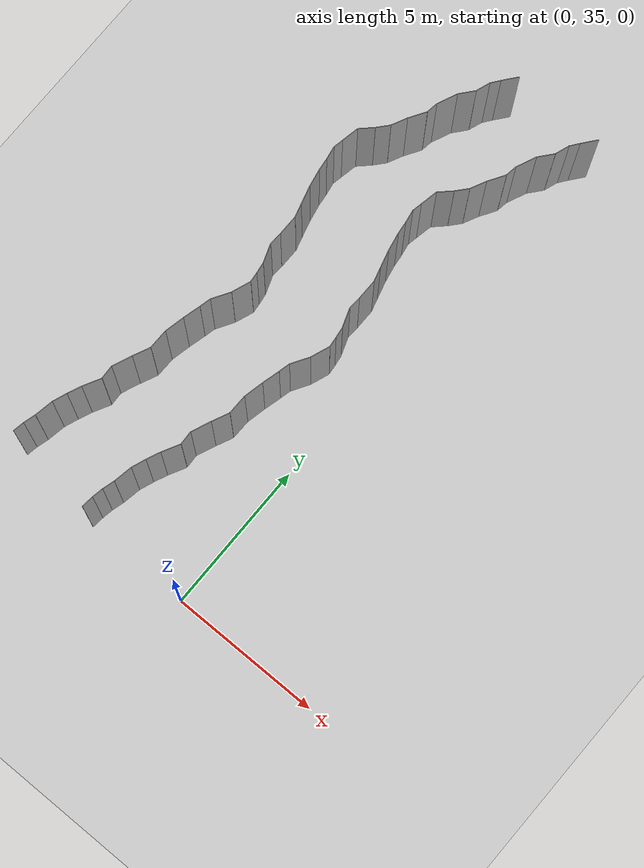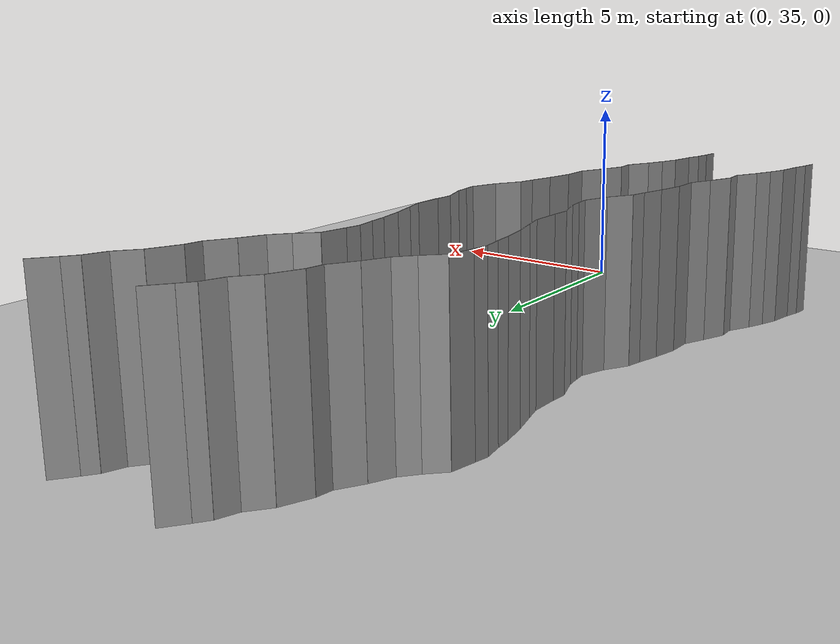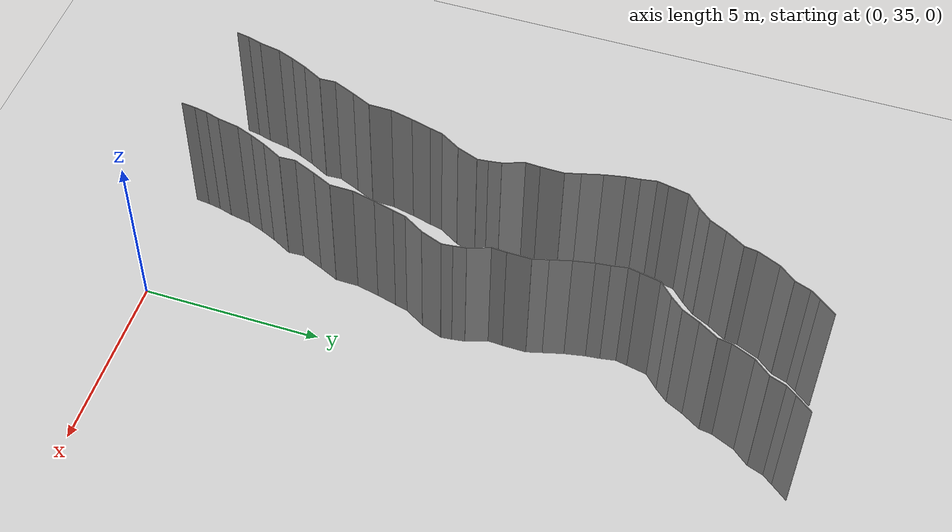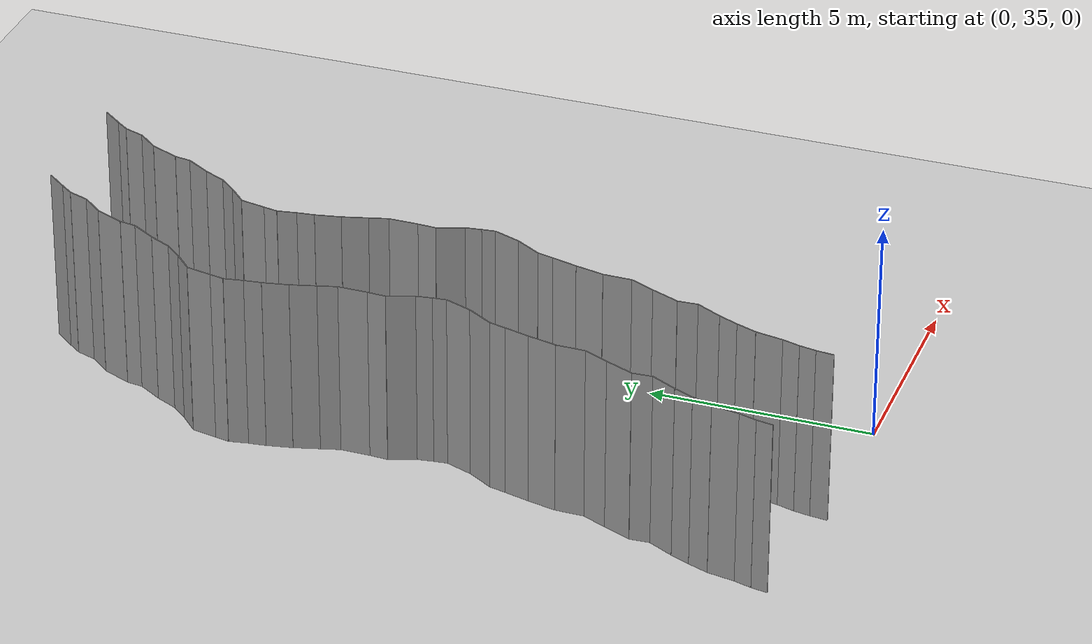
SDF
<sdf version="1.6">
 <world name="default">
  <model name="ground_plane">
   <static>1</static>
   <link name="link">
    <collision name="collision">
     <geometry><plane><normal>0 0 1</normal><size>200 200</size></plane></geometry>
     <surface><friction><ode><mu>100</mu><mu2>50</mu2></ode></friction></surface>
    </collision>
    <visual name="visual">
     <cast_shadows>0</cast_shadows>
     <geometry><plane><normal>0 0 1</normal><size>200 200</size></plane></geometry>
     <material>
      <script><uri>file://media/materials/scripts/gazebo.material</uri><name>Gazebo/Grey</name></script>
     </material>
    </visual>
   </link>
   <pose>0 100 0 0 -0 0</pose>
  </model>
  <model name="wall_149">
   <static>1</static>
   <pose>-3.4652931734535173 35.198622728076074 2 0 0 -0.10935310508599565</pose>
   <link name="link">
    <collision name="collision"><geometry><box><size>0.02 0.397469309263 4</size></box></geometry></collision>
    <visual name="visual">
     <material>
      <script><name>Gazebo/Grey</name><uri>file://media/materials/scripts/gazebo.material</uri></script>
     </material>
     <geometry><box><size>0.02 0.397469309263 4</size></box></geometry>
    </visual>
   </link>
  </model>
  <model name="wall_150">
   <static>1</static>
   <pose>-6.410654290506569 35.57952415815755 2 0 0 -0.17780885669084198</pose>
   <link name="link">
    <collision name="collision"><geometry><box><size>0.02 0.372581945036 4</size></box></geometry></collision>
    <visual name="visual">
     <material>
      <script><name>Gazebo/Grey</name><uri>file://media/materials/scripts/gazebo.material</uri></script>
     </material>
     <geometry><box><size>0.02 0.372581945036 4</size></box></geometry>
    </visual>
   </link>
  </model>
  <model name="wall_151">
   <static>1</static>
   <pose>-3.410654290506569 35.57952415815755 2 0 0 -0.17780885669084198</pose>
   <link name="link">
    <collision name="collision"><geometry><box><size>0.02 0.372581945036 4</size></box></geometry></collision>
    <visual name="visual">
     <material>
      <script><name>Gazebo/Grey</name><uri>file://media/materials/scripts/gazebo.material</uri></script>
     </material>
     <geometry><box><size>0.02 0.372581945036 4</size></box></geometry>
    </visual>
   </link>
  </model>
  <model name="wall_152">
   <static>1</static>
   <pose>-6.32158280530682 35.95615515435733 2 0 0 -0.28259714906509237</pose>
   <link name="link">
    <collision name="collision"><geometry><box><size>0.02 0.402520512626 4</size></box></geometry></collision>
    <visual name="visual">
     <material>
      <script><name>Gazebo/Grey</name><uri>file://media/materials/scripts/gazebo.material</uri></script>
     </material>
     <geometry><box><size>0.02 0.402520512626 4</size></box></geometry>
    </visual>
   </link>
  </model>
  <model name="wall_153">
   <static>1</static>
   <pose>-3.3215828053068197 35.95615515435733 2 0 0 -0.28259714906509237</pose>
   <link name="link">
    <collision name="collision"><geometry><box><size>0.02 0.402520512626 4</size></box></geometry></collision>
    <visual name="visual">
     <material>
      <script><name>Gazebo/Grey</name><uri>file://media/materials/scripts/gazebo.material</uri></script>
     </material>
     <geometry><box><size>0.02 0.402520512626 4</size></box></geometry>
    </visual>
   </link>
  </model>
  <model name="wall_154">
   <static>1</static>
   <pose>-6.209481038724627 36.45386312276201 2 0 0 -0.18185326015260014</pose>
   <link name="link">
    <collision name="collision"><geometry><box><size>0.02 0.619069947548 4</size></box></geometry></collision>
    <visual name="visual">
     <material>
      <script><name>Gazebo/Grey</name><uri>file://media/materials/scripts/gazebo.material</uri></script>
     </material>
     <geometry><box><size>0.02 0.619069947548 4</size></box></geometry>
    </visual>
   </link>
  </model>
  <model name="wall_155">
   <static>1</static>
   <pose>-3.2094810387246273 36.45386312276201 2 0 0 -0.18185326015260014</pose>
   <link name="link">
    <collision name="collision"><geometry><box><size>0.02 0.619069947548 4</size></box></geometry></collision>
    <visual name="visual">
     <material>
      <script><name>Gazebo/Grey</name><uri>file://media/materials/scripts/gazebo.material</uri></script>
     </material>
     <geometry><box><size>0.02 0.619069947548 4</size></box></geometry>
    </visual>
   </link>
  </model>
  <model name="wall_156">
   <static>1</static>
   <pose>-6.068467785097086 36.98447676395579 2 0 0 -0.35960180741463393</pose>
   <link name="link">
    <collision name="collision"><geometry><box><size>0.02 0.483277535267 4</size></box></geometry></collision>
    <visual name="visual">
     <material>
      <script><name>Gazebo/Grey</name><uri>file://media/materials/scripts/gazebo.material</uri></script>
     </material>
     <geometry><box><size>0.02 0.483277535267 4</size></box></geometry>
    </visual>
   </link>
  </model>
  <model name="wall_157">
   <static>1</static>
   <pose>-3.068467785097086 36.98447676395579 2 0 0 -0.35960180741463393</pose>
   <link name="link">
    <collision name="collision"><geometry><box><size>0.02 0.483277535267 4</size></box></geometry></collision>
    <visual name="visual">
     <material>
      <script><name>Gazebo/Grey</name><uri>file://media/materials/scripts/gazebo.material</uri></script>
     </material>
     <geometry><box><size>0.02 0.483277535267 4</size></box></geometry>
    </visual>
   </link>
  </model>
  <model name="wall_158">
   <static>1</static>
   <pose>-5.889811320513455 37.426421938035695 2 0 0 -0.40940092253279514</pose>
   <link name="link">
    <collision name="collision"><geometry><box><size>0.02 0.470398686313 4</size></box></geometry></collision>
    <visual name="visual">
     <material>
      <script><name>Gazebo/Grey</name><uri>file://media/materials/scripts/gazebo.material</uri></script>
     </material>
     <geometry><box><size>0.02 0.470398686313 4</size></box></geometry>
    </visual>
   </link>
  </model>
  <model name="wall_159">
   <static>1</static>
   <pose>-2.889811320513455 37.426421938035695 2 0 0 -0.40940092253279514</pose>
   <link name="link">
    <collision name="collision"><geometry><box><size>0.02 0.470398686313 4</size></box></geometry></collision>
    <visual name="visual">
     <material>
      <script><name>Gazebo/Grey</name><uri>file://media/materials/scripts/gazebo.material</uri></script>
     </material>
     <geometry><box><size>0.02 0.470398686313 4</size></box></geometry>
    </visual>
   </link>
  </model>
  <model name="wall_160">
   <static>1</static>
   <pose>-5.649091448015389 37.91988213105806 2 0 0 -0.4871240869839395</pose>
   <link name="link">
    <collision name="collision"><geometry><box><size>0.02 0.628501283517 4</size></box></geometry></collision>
    <visual name="visual">
     <material>
      <script><name>Gazebo/Grey</name><uri>file://media/materials/scripts/gazebo.material</uri></script>
     </material>
     <geometry><box><size>0.02 0.628501283517 4</size></box></geometry>
    </visual>
   </link>
  </model>
  <model name="wall_161">
   <static>1</static>
   <pose>-2.6490914480153887 37.91988213105806 2 0 0 -0.4871240869839395</pose>
   <link name="link">
    <collision name="collision"><geometry><box><size>0.02 0.628501283517 4</size></box></geometry></collision>
    <visual name="visual">
     <material>
      <script><name>Gazebo/Grey</name><uri>file://media/materials/scripts/gazebo.material</uri></script>
     </material>
     <geometry><box><size>0.02 0.628501283517 4</size></box></geometry>
    </visual>
   </link>
  </model>
  <model name="wall_162">
   <static>1</static>
   <pose>-5.512013253229523 38.41987348325314 2 0 0 0.04503727126226935</pose>
   <link name="link">
    <collision name="collision"><geometry><box><size>0.02 0.445038273065 4</size></box></geometry></collision>
    <visual name="visual">
     <material>
      <script><name>Gazebo/Grey</name><uri>file://media/materials/scripts/gazebo.material</uri></script>
     </material>
     <geometry><box><size>0.02 0.445038273065 4</size></box></geometry>
    </visual>
   </link>
  </model>
  <model name="wall_163">
   <static>1</static>
   <pose>-2.512013253229523 38.41987348325314 2 0 0 0.04503727126226935</pose>
   <link name="link">
    <collision name="collision"><geometry><box><size>0.02 0.445038273065 4</size></box></geometry></collision>
    <visual name="visual">
     <material>
      <script><name>Gazebo/Grey</name><uri>file://media/materials/scripts/gazebo.material</uri></script>
     </material>
     <geometry><box><size>0.02 0.445038273065 4</size></box></geometry>
    </visual>
   </link>
  </model>
  <model name="wall_164">
   <static>1</static>
   <pose>-5.392659955608513 38.94949552614185 2 0 0 -0.3984397297303336</pose>
   <link name="link">
    <collision name="collision"><geometry><box><size>0.02 0.666896797481 4</size></box></geometry></collision>
    <visual name="visual">
     <material>
      <script><name>Gazebo/Grey</name><uri>file://media/materials/scripts/gazebo.material</uri></script>
     </material>
     <geometry><box><size>0.02 0.666896797481 4</size></box></geometry>
    </visual>
   </link>
  </model>
  <model name="wall_165">
   <static>1</static>
   <pose>-2.3926599556085133 38.94949552614185 2 0 0 -0.3984397297303336</pose>
   <link name="link">
    <collision name="collision"><geometry><box><size>0.02 0.666896797481 4</size></box></geometry></collision>
    <visual name="visual">
     <material>
      <script><name>Gazebo/Grey</name><uri>file://media/materials/scripts/gazebo.material</uri></script>
     </material>
     <geometry><box><size>0.02 0.666896797481 4</size></box></geometry>
    </visual>
   </link>
  </model>
  <model name="wall_166">
   <static>1</static>
   <pose>-5.139651028725523 39.52492841209428 2 0 0 -0.4320906954613226</pose>
   <link name="link">
    <collision name="collision"><geometry><box><size>0.02 0.590478234818 4</size></box></geometry></collision>
    <visual name="visual">
     <material>
      <script><name>Gazebo/Grey</name><uri>file://media/materials/scripts/gazebo.material</uri></script>
     </material>
     <geometry><box><size>0.02 0.590478234818 4</size></box></geometry>
    </visual>
   </link>
  </model>
  <model name="wall_167">
   <static>1</static>
   <pose>-2.139651028725523 39.52492841209428 2 0 0 -0.4320906954613226</pose>
   <link name="link">
    <collision name="collision"><geometry><box><size>0.02 0.590478234818 4</size></box></geometry></collision>
    <visual name="visual">
     <material>
      <script><name>Gazebo/Grey</name><uri>file://media/materials/scripts/gazebo.material</uri></script>
     </material>
     <geometry><box><size>0.02 0.590478234818 4</size></box></geometry>
    </visual>
   </link>
  </model>
  <model name="wall_168">
   <static>1</static>
   <pose>-5.011093716172795 40.11372243539438 2 0 0 -0.015340576260323324</pose>
   <link name="link">
    <collision name="collision"><geometry><box><size>0.02 0.641454835458 4</size></box></geometry></collision>
    <visual name="visual">
     <material>
      <script><name>Gazebo/Grey</name><uri>file://media/materials/scripts/gazebo.material</uri></script>
     </material>
     <geometry><box><size>0.02 0.641454835458 4</size></box></geometry>
    </visual>
   </link>
  </model>
  <model name="wall_169">
   <static>1</static>
   <pose>-2.0110937161727946 40.11372243539438 2 0 0 -0.015340576260323324</pose>
   <link name="link">
    <collision name="collision"><geometry><box><size>0.02 0.641454835458 4</size></box></geometry></collision>
    <visual name="visual">
     <material>
      <script><name>Gazebo/Grey</name><uri>file://media/materials/scripts/gazebo.material</uri></script>
     </material>
     <geometry><box><size>0.02 0.641454835458 4</size></box></geometry>
    </visual>
   </link>
  </model>
  <model name="wall_170">
   <static>1</static>
   <pose>-4.935536337639214 40.75210721960189 2 0 0 -0.2187844732949563</pose>
   <link name="link">
    <collision name="collision"><geometry><box><size>0.02 0.650906524075 4</size></box></geometry></collision>
    <visual name="visual">
     <material>
      <script><name>Gazebo/Grey</name><uri>file://media/materials/scripts/gazebo.material</uri></script>
     </material>
     <geometry><box><size>0.02 0.650906524075 4</size></box></geometry>
    </visual>
   </link>
  </model>
  <model name="wall_171">
   <static>1</static>
   <pose>-1.9355363376392143 40.75210721960189 2 0 0 -0.2187844732949563</pose>
   <link name="link">
    <collision name="collision"><geometry><box><size>0.02 0.650906524075 4</size></box></geometry></collision>
    <visual name="visual">
     <material>
      <script><name>Gazebo/Grey</name><uri>file://media/materials/scripts/gazebo.material</uri></script>
     </material>
     <geometry><box><size>0.02 0.650906524075 4</size></box></geometry>
    </visual>
   </link>
  </model>
  <model name="wall_172">
   <static>1</static>
   <pose>-4.790777401792797 41.350557031840744 2 0 0 -0.25811865808439216</pose>
   <link name="link">
    <collision name="collision"><geometry><box><size>0.02 0.580748495446 4</size></box></geometry></collision>
    <visual name="visual">
     <material>
      <script><name>Gazebo/Grey</name><uri>file://media/materials/scripts/gazebo.material</uri></script>
     </material>
     <geometry><box><size>0.02 0.580748495446 4</size></box></geometry>
    </visual>
   </link>
  </model>
  <model name="wall_173">
   <static>1</static>
   <pose>-1.7907774017927967 41.350557031840744 2 0 0 -0.25811865808439216</pose>
   <link name="link">
    <collision name="collision"><geometry><box><size>0.02 0.580748495446 4</size></box></geometry></collision>
    <visual name="visual">
     <material>
      <script><name>Gazebo/Grey</name><uri>file://media/materials/scripts/gazebo.material</uri></script>
     </material>
     <geometry><box><size>0.02 0.580748495446 4</size></box></geometry>
    </visual>
   </link>
  </model>
  <model name="wall_174">
   <static>1</static>
   <pose>-4.672749534180182 41.81225761045228 2 0 0 -0.2380483299632675</pose>
   <link name="link">
    <collision name="collision"><geometry><box><size>0.02 0.372393215185 4</size></box></geometry></collision>
    <visual name="visual">
     <material>
      <script><name>Gazebo/Grey</name><uri>file://media/materials/scripts/gazebo.material</uri></script>
     </material>
     <geometry><box><size>0.02 0.372393215185 4</size></box></geometry>
    </visual>
   </link>
  </model>
  <model name="wall_175">
   <static>1</static>
   <pose>-1.6727495341801824 41.81225761045228 2 0 0 -0.2380483299632675</pose>
   <link name="link">
    <collision name="collision"><geometry><box><size>0.02 0.372393215185 4</size></box></geometry></collision>
    <visual name="visual">
     <material>
      <script><name>Gazebo/Grey</name><uri>file://media/materials/scripts/gazebo.material</uri></script>
     </material>
     <geometry><box><size>0.02 0.372393215185 4</size></box></geometry>
    </visual>
   </link>
  </model>
  <model name="wall_176">
   <static>1</static>
   <pose>-4.458430989030286 42.27139951302062 2 0 0 -0.549604752552951</pose>
   <link name="link">
    <collision name="collision"><geometry><box><size>0.02 0.652482474424 4</size></box></geometry></collision>
    <visual name="visual">
     <material>
      <script><name>Gazebo/Grey</name><uri>file://media/materials/scripts/gazebo.material</uri></script>
     </material>
     <geometry><box><size>0.02 0.652482474424 4</size></box></geometry>
    </visual>
   </link>
  </model>
  <model name="wall_177">
   <static>1</static>
   <pose>-1.458430989030286 42.27139951302062 2 0 0 -0.549604752552951</pose>
   <link name="link">
    <collision name="collision"><geometry><box><size>0.02 0.652482474424 4</size></box></geometry></collision>
    <visual name="visual">
     <material>
      <script><name>Gazebo/Grey</name><uri>file://media/materials/scripts/gazebo.material</uri></script>
     </material>
     <geometry><box><size>0.02 0.652482474424 4</size></box></geometry>
    </visual>
   </link>
  </model>
  <model name="wall_178">
   <static>1</static>
   <pose>-4.176639065803046 42.84576706189307 2 0 0 -0.3597040308105902</pose>
   <link name="link">
    <collision name="collision"><geometry><box><size>0.02 0.632844415962 4</size></box></geometry></collision>
    <visual name="visual">
     <material>
      <script><name>Gazebo/Grey</name><uri>file://media/materials/scripts/gazebo.material</uri></script>
     </material>
     <geometry><box><size>0.02 0.632844415962 4</size></box></geometry>
    </visual>
   </link>
  </model>
  <model name="wall_179">
   <static>1</static>
   <pose>-1.1766390658030463 42.84576706189307 2 0 0 -0.3597040308105902</pose>
   <link name="link">
    <collision name="collision"><geometry><box><size>0.02 0.632844415962 4</size></box></geometry></collision>
    <visual name="visual">
     <material>
      <script><name>Gazebo/Grey</name><uri>file://media/materials/scripts/gazebo.material</uri></script>
     </material>
     <geometry><box><size>0.02 0.632844415962 4</size></box></geometry>
    </visual>
   </link>
  </model>
  <model name="wall_180">
   <static>1</static>
   <pose>-4.080136001296072 43.292700107008926 2 0 0 0.09835843717163763</pose>
   <link name="link">
    <collision name="collision"><geometry><box><size>0.02 0.302987482725 4</size></box></geometry></collision>
    <visual name="visual">
     <material>
      <script><name>Gazebo/Grey</name><uri>file://media/materials/scripts/gazebo.material</uri></script>
     </material>
     <geometry><box><size>0.02 0.302987482725 4</size></box></geometry>
    </visual>
   </link>
  </model>
  <model name="wall_181">
   <static>1</static>
   <pose>-1.0801360012960721 43.292700107008926 2 0 0 0.09835843717163763</pose>
   <link name="link">
    <collision name="collision"><geometry><box><size>0.02 0.302987482725 4</size></box></geometry></collision>
    <visual name="visual">
     <material>
      <script><name>Gazebo/Grey</name><uri>file://media/materials/scripts/gazebo.material</uri></script>
     </material>
     <geometry><box><size>0.02 0.302987482725 4</size></box></geometry>
    </visual>
   </link>
  </model>
  <model name="wall_182">
   <static>1</static>
   <pose>-4.119662360293357 43.619419843847275 2 0 0 0.1391825384694185</pose>
   <link name="link">
    <collision name="collision"><geometry><box><size>0.02 0.35535277307 4</size></box></geometry></collision>
    <visual name="visual">
     <material>
      <script><name>Gazebo/Grey</name><uri>file://media/materials/scripts/gazebo.material</uri></script>
     </material>
     <geometry><box><size>0.02 0.35535277307 4</size></box></geometry>
    </visual>
   </link>
  </model>
  <model name="wall_183">
   <static>1</static>
   <pose>-1.1196623602933569 43.619419843847275 2 0 0 0.1391825384694185</pose>
   <link name="link">
    <collision name="collision"><geometry><box><size>0.02 0.35535277307 4</size></box></geometry></collision>
    <visual name="visual">
     <material>
      <script><name>Gazebo/Grey</name><uri>file://media/materials/scripts/gazebo.material</uri></script>
     </material>
     <geometry><box><size>0.02 0.35535277307 4</size></box></geometry>
    </visual>
   </link>
  </model>
  <model name="wall_184">
   <static>1</static>
   <pose>-4.248842105782897 44.08951912636445 2 0 0 0.34145421181477337</pose>
   <link name="link">
    <collision name="collision"><geometry><box><size>0.02 0.624325250254 4</size></box></geometry></collision>
    <visual name="visual">
     <material>
      <script><name>Gazebo/Grey</name><uri>file://media/materials/scripts/gazebo.material</uri></script>
     </material>
     <geometry><box><size>0.02 0.624325250254 4</size></box></geometry>
    </visual>
   </link>
  </model>
  <model name="wall_185">
   <static>1</static>
   <pose>-1.248842105782897 44.08951912636445 2 0 0 0.34145421181477337</pose>
   <link name="link">
    <collision name="collision"><geometry><box><size>0.02 0.624325250254 4</size></box></geometry></collision>
    <visual name="visual">
     <material>
      <script><name>Gazebo/Grey</name><uri>file://media/materials/scripts/gazebo.material</uri></script>
     </material>
     <geometry><box><size>0.02 0.624325250254 4</size></box></geometry>
    </visual>
   </link>
  </model>
  <model name="wall_186">
   <static>1</static>
   <pose>-4.341229113502272 44.58714453194623 2 0 0 -0.05960492524328845</pose>
   <link name="link">
    <collision name="collision"><geometry><box><size>0.02 0.40769266432 4</size></box></geometry></collision>
    <visual name="visual">
     <material>
      <script><name>Gazebo/Grey</name><uri>file://media/materials/scripts/gazebo.material</uri></script>
     </material>
     <geometry><box><size>0.02 0.40769266432 4</size></box></geometry>
    </visual>
   </link>
  </model>
  <model name="wall_187">
   <static>1</static>
   <pose>-1.3412291135022718 44.58714453194623 2 0 0 -0.05960492524328845</pose>
   <link name="link">
    <collision name="collision"><geometry><box><size>0.02 0.40769266432 4</size></box></geometry></collision>
    <visual name="visual">
     <material>
      <script><name>Gazebo/Grey</name><uri>file://media/materials/scripts/gazebo.material</uri></script>
     </material>
     <geometry><box><size>0.02 0.40769266432 4</size></box></geometry>
    </visual>
   </link>
  </model>
  <model name="wall_188">
   <static>1</static>
   <pose>-4.326096160794802 45.12042451943342 2 0 0 -0.009065670027643781</pose>
   <link name="link">
    <collision name="collision"><geometry><box><size>0.02 0.659618416372 4</size></box></geometry></collision>
    <visual name="visual">
     <material>
      <script><name>Gazebo/Grey</name><uri>file://media/materials/scripts/gazebo.material</uri></script>
     </material>
     <geometry><box><size>0.02 0.659618416372 4</size></box></geometry>
    </visual>
   </link>
  </model>
  <model name="wall_189">
   <static>1</static>
   <pose>-1.326096160794802 45.12042451943342 2 0 0 -0.009065670027643781</pose>
   <link name="link">
    <collision name="collision"><geometry><box><size>0.02 0.659618416372 4</size></box></geometry></collision>
    <visual name="visual">
     <material>
      <script><name>Gazebo/Grey</name><uri>file://media/materials/scripts/gazebo.material</uri></script>
     </material>
     <geometry><box><size>0.02 0.659618416372 4</size></box></geometry>
    </visual>
   </link>
  </model>
  <model name="wall_190">
   <static>1</static>
   <pose>-4.380709085080246 45.660767994286985 2 0 0 0.26705066141258393</pose>
   <link name="link">
    <collision name="collision"><geometry><box><size>0.02 0.436570588626 4</size></box></geometry></collision>
    <visual name="visual">
     <material>
      <script><name>Gazebo/Grey</name><uri>file://media/materials/scripts/gazebo.material</uri></script>
     </material>
     <geometry><box><size>0.02 0.436570588626 4</size></box></geometry>
    </visual>
   </link>
  </model>
  <model name="wall_191">
   <static>1</static>
   <pose>-1.3807090850802464 45.660767994286985 2 0 0 0.26705066141258393</pose>
   <link name="link">
    <collision name="collision"><geometry><box><size>0.02 0.436570588626 4</size></box></geometry></collision>
    <visual name="visual">
     <material>
      <script><name>Gazebo/Grey</name><uri>file://media/materials/scripts/gazebo.material</uri></script>
     </material>
     <geometry><box><size>0.02 0.436570588626 4</size></box></geometry>
    </visual>
   </link>
  </model>
  <model name="wall_192">
   <static>1</static>
   <pose>-4.514191258795935 46.15182158408157 2 0 0 0.264186233686502</pose>
   <link name="link">
    <collision name="collision"><geometry><box><size>0.02 0.581175232682 4</size></box></geometry></collision>
    <visual name="visual">
     <material>
      <script><name>Gazebo/Grey</name><uri>file://media/materials/scripts/gazebo.material</uri></script>
     </material>
     <geometry><box><size>0.02 0.581175232682 4</size></box></geometry>
    </visual>
   </link>
  </model>
  <model name="wall_193">
   <static>1</static>
   <pose>-1.5141912587959352 46.15182158408157 2 0 0 0.264186233686502</pose>
   <link name="link">
    <collision name="collision"><geometry><box><size>0.02 0.581175232682 4</size></box></geometry></collision>
    <visual name="visual">
     <material>
      <script><name>Gazebo/Grey</name><uri>file://media/materials/scripts/gazebo.material</uri></script>
     </material>
     <geometry><box><size>0.02 0.581175232682 4</size></box></geometry>
    </visual>
   </link>
  </model>
  <model name="wall_194">
   <static>1</static>
   <pose>-4.6448639467387185 46.716073379111165 2 0 0 0.19075895966013437</pose>
   <link name="link">
    <collision name="collision"><geometry><box><size>0.02 0.577976181326 4</size></box></geometry></collision>
    <visual name="visual">
     <material>
      <script><name>Gazebo/Grey</name><uri>file://media/materials/scripts/gazebo.material</uri></script>
     </material>
     <geometry><box><size>0.02 0.577976181326 4</size></box></geometry>
    </visual>
   </link>
  </model>
  <model name="wall_195">
   <static>1</static>
   <pose>-1.6448639467387185 46.716073379111165 2 0 0 0.19075895966013437</pose>
   <link name="link">
    <collision name="collision"><geometry><box><size>0.02 0.577976181326 4</size></box></geometry></collision>
    <visual name="visual">
     <material>
      <script><name>Gazebo/Grey</name><uri>file://media/materials/scripts/gazebo.material</uri></script>
     </material>
     <geometry><box><size>0.02 0.577976181326 4</size></box></geometry>
    </visual>
   </link>
  </model>
  <model name="wall_196">
   <static>1</static>
   <pose>-4.720559942070071 47.192027741782255 2 0 0 0.10832430154619198</pose>
   <link name="link">
    <collision name="collision"><geometry><box><size>0.02 0.386683158251 4</size></box></geometry></collision>
    <visual name="visual">
     <material>
      <script><name>Gazebo/Grey</name><uri>file://media/materials/scripts/gazebo.material</uri></script>
     </material>
     <geometry><box><size>0.02 0.386683158251 4</size></box></geometry>
    </visual>
   </link>
  </model>
  <model name="wall_197">
   <static>1</static>
   <pose>-1.7205599420700706 47.192027741782255 2 0 0 0.10832430154619198</pose>
   <link name="link">
    <collision name="collision"><geometry><box><size>0.02 0.386683158251 4</size></box></geometry></collision>
    <visual name="visual">
     <material>
      <script><name>Gazebo/Grey</name><uri>file://media/materials/scripts/gazebo.material</uri></script>
     </material>
     <geometry><box><size>0.02 0.386683158251 4</size></box></geometry>
    </visual>
   </link>
  </model>
  <model name="wall_198">
   <static>1</static>
   <pose>-4.777790885967193 47.59770678205725 2 0 0 0.16856438336544974</pose>
   <link name="link">
    <collision name="collision"><geometry><box><size>0.02 0.433079601133 4</size></box></geometry></collision>
    <visual name="visual">
     <material>
      <script><name>Gazebo/Grey</name><uri>file://media/materials/scripts/gazebo.material</uri></script>
     </material>
     <geometry><box><size>0.02 0.433079601133 4</size></box></geometry>
    </visual>
   </link>
  </model>
  <model name="wall_199">
   <static>1</static>
   <pose>-1.7777908859671934 47.59770678205725 2 0 0 0.16856438336544974</pose>
   <link name="link">
    <collision name="collision"><geometry><box><size>0.02 0.433079601133 4</size></box></geometry></collision>
    <visual name="visual">
     <material>
      <script><name>Gazebo/Grey</name><uri>file://media/materials/scripts/gazebo.material</uri></script>
     </material>
     <geometry><box><size>0.02 0.433079601133 4</size></box></geometry>
    </visual>
   </link>
  </model>
  <model name="wall_200">
   <static>1</static>
   <pose>-4.782840854802489 47.96910896563805 2 0 0 -0.195519790899274</pose>
   <link name="link">
    <collision name="collision"><geometry><box><size>0.02 0.321998049652 4</size></box></geometry></collision>
    <visual name="visual">
     <material>
      <script><name>Gazebo/Grey</name><uri>file://media/materials/scripts/gazebo.material</uri></script>
     </material>
     <geometry><box><size>0.02 0.321998049652 4</size></box></geometry>
    </visual>
   </link>
  </model>
  <model name="wall_201">
   <static>1</static>
   <pose>-1.7828408548024894 47.96910896563805 2 0 0 -0.195519790899274</pose>
   <link name="link">
    <collision name="collision"><geometry><box><size>0.02 0.321998049652 4</size></box></geometry></collision>
    <visual name="visual">
     <material>
      <script><name>Gazebo/Grey</name><uri>file://media/materials/scripts/gazebo.material</uri></script>
     </material>
     <geometry><box><size>0.02 0.321998049652 4</size></box></geometry>
    </visual>
   </link>
  </model>
  <model name="wall_202">
   <static>1</static>
   <pose>-4.695124492480694 48.4078101980639 2 0 0 -0.19836829088129912</pose>
   <link name="link">
    <collision name="collision"><geometry><box><size>0.02 0.572771877575 4</size></box></geometry></collision>
    <visual name="visual">
     <material>
      <script><name>Gazebo/Grey</name><uri>file://media/materials/scripts/gazebo.material</uri></script>
     </material>
     <geometry><box><size>0.02 0.572771877575 4</size></box></geometry>
    </visual>
   </link>
  </model>
  <model name="wall_203">
   <static>1</static>
   <pose>-1.6951244924806943 48.4078101980639 2 0 0 -0.19836829088129912</pose>
   <link name="link">
    <collision name="collision"><geometry><box><size>0.02 0.572771877575 4</size></box></geometry></collision>
    <visual name="visual">
     <material>
      <script><name>Gazebo/Grey</name><uri>file://media/materials/scripts/gazebo.material</uri></script>
     </material>
     <geometry><box><size>0.02 0.572771877575 4</size></box></geometry>
    </visual>
   </link>
  </model>
  <model name="wall_204">
   <static>1</static>
   <pose>-4.450597129985602 48.87031365752677 2 0 0 -0.8025820177549263</pose>
   <link name="link">
    <collision name="collision"><geometry><box><size>0.02 0.523085968535 4</size></box></geometry></collision>
    <visual name="visual">
     <material>
      <script><name>Gazebo/Grey</name><uri>file://media/materials/scripts/gazebo.material</uri></script>
     </material>
     <geometry><box><size>0.02 0.523085968535 4</size></box></geometry>
    </visual>
   </link>
  </model>
  <model name="wall_205">
   <static>1</static>
   <pose>-1.450597129985602 48.87031365752677 2 0 0 -0.8025820177549263</pose>
   <link name="link">
    <collision name="collision"><geometry><box><size>0.02 0.523085968535 4</size></box></geometry></collision>
    <visual name="visual">
     <material>
      <script><name>Gazebo/Grey</name><uri>file://media/materials/scripts/gazebo.material</uri></script>
     </material>
     <geometry><box><size>0.02 0.523085968535 4</size></box></geometry>
    </visual>
   </link>
  </model>
  <model name="wall_206">
   <static>1</static>
   <pose>-4.110872802041561 49.2264018003902 2 0 0 -0.7158169287440468</pose>
   <link name="link">
    <collision name="collision"><geometry><box><size>0.02 0.462136970249 4</size></box></geometry></collision>
    <visual name="visual">
     <material>
      <script><name>Gazebo/Grey</name><uri>file://media/materials/scripts/gazebo.material</uri></script>
     </material>
     <geometry><box><size>0.02 0.462136970249 4</size></box></geometry>
    </visual>
   </link>
  </model>
  <model name="wall_207">
   <static>1</static>
   <pose>-1.1108728020415608 49.2264018003902 2 0 0 -0.7158169287440468</pose>
   <link name="link">
    <collision name="collision"><geometry><box><size>0.02 0.462136970249 4</size></box></geometry></collision>
    <visual name="visual">
     <material>
      <script><name>Gazebo/Grey</name><uri>file://media/materials/scripts/gazebo.material</uri></script>
     </material>
     <geometry><box><size>0.02 0.462136970249 4</size></box></geometry>
    </visual>
   </link>
  </model>
  <model name="wall_208">
   <static>1</static>
   <pose>-3.840949276405548 49.64116846426069 2 0 0 -0.4572462392095268</pose>
   <link name="link">
    <collision name="collision"><geometry><box><size>0.02 0.535873914864 4</size></box></geometry></collision>
    <visual name="visual">
     <material>
      <script><name>Gazebo/Grey</name><uri>file://media/materials/scripts/gazebo.material</uri></script>
     </material>
     <geometry><box><size>0.02 0.535873914864 4</size></box></geometry>
    </visual>
   </link>
  </model>
  <model name="wall_209">
   <static>1</static>
   <pose>-0.840949276405548 49.64116846426069 2 0 0 -0.4572462392095268</pose>
   <link name="link">
    <collision name="collision"><geometry><box><size>0.02 0.535873914864 4</size></box></geometry></collision>
    <visual name="visual">
     <material>
      <script><name>Gazebo/Grey</name><uri>file://media/materials/scripts/gazebo.material</uri></script>
     </material>
     <geometry><box><size>0.02 0.535873914864 4</size></box></geometry>
    </visual>
   </link>
  </model>
  <model name="wall_210">
   <static>1</static>
   <pose>-3.5597459039293815 50.14396443616124 2 0 0 -0.555647739782848</pose>
   <link name="link">
    <collision name="collision"><geometry><box><size>0.02 0.617694029902 4</size></box></geometry></collision>
    <visual name="visual">
     <material>
      <script><name>Gazebo/Grey</name><uri>file://media/materials/scripts/gazebo.material</uri></script>
     </material>
     <geometry><box><size>0.02 0.617694029902 4</size></box></geometry>
    </visual>
   </link>
  </model>
  <model name="wall_211">
   <static>1</static>
   <pose>-0.5597459039293815 50.14396443616124 2 0 0 -0.555647739782848</pose>
   <link name="link">
    <collision name="collision"><geometry><box><size>0.02 0.617694029902 4</size></box></geometry></collision>
    <visual name="visual">
     <material>
      <script><name>Gazebo/Grey</name><uri>file://media/materials/scripts/gazebo.material</uri></script>
     </material>
     <geometry><box><size>0.02 0.617694029902 4</size></box></geometry>
    </visual>
   </link>
  </model>
  <model name="wall_212">
   <static>1</static>
   <pose>-3.3692882239427986 50.586368230648205 2 0 0 -0.15182131042554953</pose>
   <link name="link">
    <collision name="collision"><geometry><box><size>0.02 0.364229742012 4</size></box></geometry></collision>
    <visual name="visual">
     <material>
      <script><name>Gazebo/Grey</name><uri>file://media/materials/scripts/gazebo.material</uri></script>
     </material>
     <geometry><box><size>0.02 0.364229742012 4</size></box></geometry>
    </visual>
   </link>
  </model>
  <model name="wall_213">
   <static>1</static>
   <pose>-0.3692882239427986 50.586368230648205 2 0 0 -0.15182131042554953</pose>
   <link name="link">
    <collision name="collision"><geometry><box><size>0.02 0.364229742012 4</size></box></geometry></collision>
    <visual name="visual">
     <material>
      <script><name>Gazebo/Grey</name><uri>file://media/materials/scripts/gazebo.material</uri></script>
     </material>
     <geometry><box><size>0.02 0.364229742012 4</size></box></geometry>
    </visual>
   </link>
  </model>
  <model name="wall_214">
   <static>1</static>
   <pose>-3.203727402300012 51.08168687652748 2 0 0 -0.4126097132126084</pose>
   <link name="link">
    <collision name="collision"><geometry><box><size>0.02 0.688366678493 4</size></box></geometry></collision>
    <visual name="visual">
     <material>
      <script><name>Gazebo/Grey</name><uri>file://media/materials/scripts/gazebo.material</uri></script>
     </material>
     <geometry><box><size>0.02 0.688366678493 4</size></box></geometry>
    </visual>
   </link>
  </model>
  <model name="wall_215">
   <static>1</static>
   <pose>-0.20372740230001218 51.08168687652748 2 0 0 -0.4126097132126084</pose>
   <link name="link">
    <collision name="collision"><geometry><box><size>0.02 0.688366678493 4</size></box></geometry></collision>
    <visual name="visual">
     <material>
      <script><name>Gazebo/Grey</name><uri>file://media/materials/scripts/gazebo.material</uri></script>
     </material>
     <geometry><box><size>0.02 0.688366678493 4</size></box></geometry>
    </visual>
   </link>
  </model>
  <model name="wall_216">
   <static>1</static>
   <pose>-2.8851660222174162 51.61398682557244 2 0 0 -0.6939461231980618</pose>
   <link name="link">
    <collision name="collision"><geometry><box><size>0.02 0.564572408392 4</size></box></geometry></collision>
    <visual name="visual">
     <material>
      <script><name>Gazebo/Grey</name><uri>file://media/materials/scripts/gazebo.material</uri></script>
     </material>
     <geometry><box><size>0.02 0.564572408392 4</size></box></geometry>
    </visual>
   </link>
  </model>
  <model name="wall_217">
   <static>1</static>
   <pose>0.11483397778258375 51.61398682557244 2 0 0 -0.6939461231980618</pose>
   <link name="link">
    <collision name="collision"><geometry><box><size>0.02 0.564572408392 4</size></box></geometry></collision>
    <visual name="visual">
     <material>
      <script><name>Gazebo/Grey</name><uri>file://media/materials/scripts/gazebo.material</uri></script>
     </material>
     <geometry><box><size>0.02 0.564572408392 4</size></box></geometry>
    </visual>
   </link>
  </model>
  <model name="wall_218">
   <static>1</static>
   <pose>-2.625396103524388 52.0505849853739 2 0 0 -0.34624753421466825</pose>
   <link name="link">
    <collision name="collision"><geometry><box><size>0.02 0.466902990714 4</size></box></geometry></collision>
    <visual name="visual">
     <material>
      <script><name>Gazebo/Grey</name><uri>file://media/materials/scripts/gazebo.material</uri></script>
     </material>
     <geometry><box><size>0.02 0.466902990714 4</size></box></geometry>
    </visual>
   </link>
  </model>
  <model name="wall_219">
   <static>1</static>
   <pose>0.374603896475612 52.0505849853739 2 0 0 -0.34624753421466825</pose>
   <link name="link">
    <collision name="collision"><geometry><box><size>0.02 0.466902990714 4</size></box></geometry></collision>
    <visual name="visual">
     <material>
      <script><name>Gazebo/Grey</name><uri>file://media/materials/scripts/gazebo.material</uri></script>
     </material>
     <geometry><box><size>0.02 0.466902990714 4</size></box></geometry>
    </visual>
   </link>
  </model>
  <model name="wall_220">
   <static>1</static>
   <pose>-2.4457203437457316 52.40422603455106 2 0 0 -0.6431001191674456</pose>
   <link name="link">
    <collision name="collision"><geometry><box><size>0.02 0.335009886389 4</size></box></geometry></collision>
    <visual name="visual">
     <material>
      <script><name>Gazebo/Grey</name><uri>file://media/materials/scripts/gazebo.material</uri></script>
     </material>
     <geometry><box><size>0.02 0.335009886389 4</size></box></geometry>
    </visual>
   </link>
  </model>
  <model name="wall_221">
   <static>1</static>
   <pose>0.5542796562542684 52.40422603455106 2 0 0 -0.6431001191674456</pose>
   <link name="link">
    <collision name="collision"><geometry><box><size>0.02 0.335009886389 4</size></box></geometry></collision>
    <visual name="visual">
     <material>
      <script><name>Gazebo/Grey</name><uri>file://media/materials/scripts/gazebo.material</uri></script>
     </material>
     <geometry><box><size>0.02 0.335009886389 4</size></box></geometry>
    </visual>
   </link>
  </model>
  <model name="wall_222">
   <static>1</static>
   <pose>-2.169509631627035 52.75905598296027 2 0 0 -0.6723417023401075</pose>
   <link name="link">
    <collision name="collision"><geometry><box><size>0.02 0.564405626882 4</size></box></geometry></collision>
    <visual name="visual">
     <material>
      <script><name>Gazebo/Grey</name><uri>file://media/materials/scripts/gazebo.material</uri></script>
     </material>
     <geometry><box><size>0.02 0.564405626882 4</size></box></geometry>
    </visual>
   </link>
  </model>
  <model name="wall_223">
   <static>1</static>
   <pose>0.8304903683729652 52.75905598296027 2 0 0 -0.6723417023401075</pose>
   <link name="link">
    <collision name="collision"><geometry><box><size>0.02 0.564405626882 4</size></box></geometry></collision>
    <visual name="visual">
     <material>
      <script><name>Gazebo/Grey</name><uri>file://media/materials/scripts/gazebo.material</uri></script>
     </material>
     <geometry><box><size>0.02 0.564405626882 4</size></box></geometry>
    </visual>
   </link>
  </model>
 </world>
</sdf>
